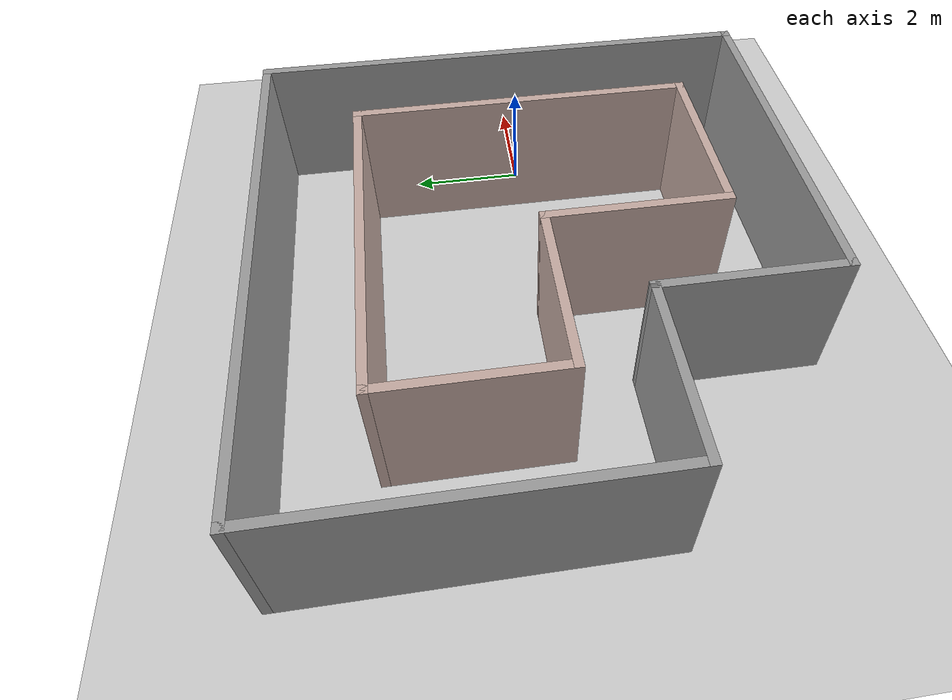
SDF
<sdf version="1.6">
 <world name="default">
  <light name="sun" type="directional">
   <pose>0 0 10 0 -0 0</pose>
   <diffuse>0.8 0.8 0.8 1</diffuse>
   <specular>0.2 0.2 0.2 1</specular>
   <attenuation>
    <range>1000</range>
    <constant>0.9</constant>
    <linear>0.01</linear>
    <quadratic>0.001</quadratic>
   </attenuation>
   <direction>-0.5 0.1 -0.9</direction>
  </light>
  <model name="ground_plane">
   <static>1</static>
   <link name="link">
    <collision name="collision">
     <geometry><plane><normal>0 0 1</normal><size>100 100</size></plane></geometry>
     <surface><friction><ode><mu>100</mu><mu2>50</mu2></ode></friction></surface>
    </collision>
    <visual name="visual">
     <cast_shadows>0</cast_shadows>
     <geometry><plane><normal>0 0 1</normal><size>100 100</size></plane></geometry>
     <material>
      <script><uri>file://media/materials/scripts/gazebo.material</uri><name>Gazebo/Grey</name></script>
     </material>
    </visual>
   </link>
  </model>
  <gravity>0 0 -9.8</gravity>
  <magnetic_field>6e-06 2.3e-05 -4.2e-05</magnetic_field>
  <atmosphere type="adiabatic"/>
  <physics name="default_physics" default="0" type="ode">
   <max_step_size>0.001</max_step_size>
   <real_time_factor>1</real_time_factor>
   <real_time_update_rate>1000</real_time_update_rate>
  </physics>
  <scene><ambient>0.4 0.4 0.4 1</ambient><background>0.7 0.7 0.7 1</background><shadows>1</shadows></scene>
  <spherical_coordinates>
   <surface_model>EARTH_WGS84</surface_model>
   <latitude_deg>0</latitude_deg>
   <longitude_deg>0</longitude_deg>
   <elevation>0</elevation>
   <heading_deg>0</heading_deg>
  </spherical_coordinates>
  <model name="corridor2">
   <pose>-3.77438 0.132637 0 0 -0 0</pose>
   <link name="Wall_13">
    <collision name="Wall_13_Collision">
     <geometry><box><size>3.00002 0.15 2.5</size></box></geometry>
     <pose>0 0 1.25 0 -0 0</pose>
    </collision>
    <visual name="Wall_13_Visual">
     <pose>0 0 1.25 0 -0 0</pose>
     <geometry><box><size>3.00002 0.15 2.5</size></box></geometry>
     <material>
      <script><uri>file://media/materials/scripts/gazebo.material</uri><name>Gazebo/Grey</name></script>
      <ambient>0.760784 0.662745 0.627451 1</ambient>
     </material>
     <meta><layer>0</layer></meta>
    </visual>
    <pose>1.55795 -3.075 0 0 -0 0</pose>
   </link>
   <link name="Wall_14">
    <collision name="Wall_14_Collision">
     <geometry><box><size>6 0.15 2.5</size></box></geometry>
     <pose>0 0 1.25 0 -0 0</pose>
    </collision>
    <visual name="Wall_14_Visual">
     <pose>0 0 1.25 0 -0 0</pose>
     <geometry><box><size>6 0.15 2.5</size></box></geometry>
     <material>
      <script><uri>file://media/materials/scripts/gazebo.material</uri><name>Gazebo/Grey</name></script>
      <ambient>0.760784 0.662745 0.627451 1</ambient>
     </material>
     <meta><layer>0</layer></meta>
    </visual>
    <pose>2.98295 -0.15 0 0 -0 1.5708</pose>
   </link>
   <link name="Wall_15">
    <collision name="Wall_15_Collision">
     <geometry><box><size>6 0.15 2.5</size></box></geometry>
     <pose>0 0 1.25 0 -0 0</pose>
    </collision>
    <visual name="Wall_15_Visual">
     <pose>0 0 1.25 0 -0 0</pose>
     <geometry><box><size>6 0.15 2.5</size></box></geometry>
     <material>
      <script><uri>file://media/materials/scripts/gazebo.material</uri><name>Gazebo/Grey</name></script>
      <ambient>0.760784 0.662745 0.627451 1</ambient>
     </material>
     <meta><layer>0</layer></meta>
    </visual>
    <pose>0.057948 2.775 0 0 -0 3.14159</pose>
   </link>
   <link name="Wall_16">
    <collision name="Wall_16_Collision">
     <geometry><box><size>3 0.15 2.5</size></box></geometry>
     <pose>0 0 1.25 0 -0 0</pose>
    </collision>
    <visual name="Wall_16_Visual">
     <pose>0 0 1.25 0 -0 0</pose>
     <geometry><box><size>3 0.15 2.5</size></box></geometry>
     <material>
      <script><uri>file://media/materials/scripts/gazebo.material</uri><name>Gazebo/Grey</name></script>
      <ambient>0.760784 0.662745 0.627451 1</ambient>
     </material>
     <meta><layer>0</layer></meta>
    </visual>
    <pose>-2.86705 1.35 0 0 0 -1.5708</pose>
   </link>
   <link name="Wall_17">
    <collision name="Wall_17_Collision">
     <geometry><box><size>3 0.15 2.5</size></box></geometry>
     <pose>0 0 1.25 0 -0 0</pose>
    </collision>
    <visual name="Wall_17_Visual">
     <pose>0 0 1.25 0 -0 0</pose>
     <geometry><box><size>3 0.15 2.5</size></box></geometry>
     <material>
      <script><uri>file://media/materials/scripts/gazebo.material</uri><name>Gazebo/Grey</name></script>
      <ambient>0.760784 0.662745 0.627451 1</ambient>
     </material>
     <meta><layer>0</layer></meta>
    </visual>
    <pose>-1.44205 -0.075 0 0 -0 0</pose>
   </link>
   <link name="Wall_18">
    <collision name="Wall_18_Collision">
     <geometry><box><size>3.15 0.15 2.5</size></box></geometry>
     <pose>0 0 1.25 0 -0 0</pose>
    </collision>
    <visual name="Wall_18_Visual">
     <pose>0 0 1.25 0 -0 0</pose>
     <geometry><box><size>3.15 0.15 2.5</size></box></geometry>
     <material>
      <script><uri>file://media/materials/scripts/gazebo.material</uri><name>Gazebo/Grey</name></script>
      <ambient>0.760784 0.662745 0.627451 1</ambient>
     </material>
     <meta><layer>0</layer></meta>
    </visual>
    <pose>-0.017052 -1.575 0 0 0 -1.5708</pose>
   </link>
   <link name="Wall_28">
    <collision name="Wall_28_Collision">
     <geometry><box><size>9 0.15 2.5</size></box></geometry>
     <pose>0 0 1.25 0 -0 0</pose>
    </collision>
    <visual name="Wall_28_Visual">
     <pose>0 0 1.25 0 -0 0</pose>
     <geometry><box><size>9 0.15 2.5</size></box></geometry>
     <material>
      <script><uri>file://media/materials/scripts/gazebo.material</uri><name>Gazebo/Grey</name></script>
      <ambient>1 1 1 1</ambient>
     </material>
     <meta><layer>0</layer></meta>
    </visual>
    <pose>4.51705 0 0 0 -0 1.5708</pose>
   </link>
   <link name="Wall_29">
    <collision name="Wall_29_Collision">
     <geometry><box><size>9.18411 0.15 2.5</size></box></geometry>
     <pose>0 0 1.25 0 -0 0</pose>
    </collision>
    <visual name="Wall_29_Visual">
     <pose>0 0 1.25 0 -0 0</pose>
     <geometry><box><size>9.18411 0.15 2.5</size></box></geometry>
     <material>
      <script><uri>file://media/materials/scripts/gazebo.material</uri><name>Gazebo/Grey</name></script>
      <ambient>1 1 1 1</ambient>
     </material>
     <meta><layer>0</layer></meta>
    </visual>
    <pose>0 4.425 0 0 -0 3.14159</pose>
   </link>
   <link name="Wall_30">
    <collision name="Wall_30_Collision">
     <geometry><box><size>6 0.15 2.5</size></box></geometry>
     <pose>0 0 1.25 0 -0 0</pose>
    </collision>
    <visual name="Wall_30_Visual">
     <pose>0 0 1.25 0 -0 0</pose>
     <geometry><box><size>6 0.15 2.5</size></box></geometry>
     <material>
      <script><uri>file://media/materials/scripts/gazebo.material</uri><name>Gazebo/Grey</name></script>
      <ambient>1 1 1 1</ambient>
     </material>
     <meta><layer>0</layer></meta>
    </visual>
    <pose>-4.51705 1.5 0 0 0 -1.5708</pose>
   </link>
   <link name="Wall_31">
    <collision name="Wall_31_Collision">
     <geometry><box><size>3 0.15 2.5</size></box></geometry>
     <pose>0 0 1.25 0 -0 0</pose>
    </collision>
    <visual name="Wall_31_Visual">
     <pose>0 0 1.25 0 -0 0</pose>
     <geometry><box><size>3 0.15 2.5</size></box></geometry>
     <material>
      <script><uri>file://media/materials/scripts/gazebo.material</uri><name>Gazebo/Grey</name></script>
      <ambient>1 1 1 1</ambient>
     </material>
     <meta><layer>0</layer></meta>
    </visual>
    <pose>-3.09205 -1.425 0 0 -0 0</pose>
   </link>
   <link name="Wall_32">
    <collision name="Wall_32_Collision">
     <geometry><box><size>3.15 0.15 2.5</size></box></geometry>
     <pose>0 0 1.25 0 -0 0</pose>
    </collision>
    <visual name="Wall_32_Visual">
     <pose>0 0 1.25 0 -0 0</pose>
     <geometry><box><size>3.15 0.15 2.5</size></box></geometry>
     <material>
      <script><uri>file://media/materials/scripts/gazebo.material</uri><name>Gazebo/Grey</name></script>
      <ambient>1 1 1 1</ambient>
     </material>
     <meta><layer>0</layer></meta>
    </visual>
    <pose>-1.66705 -2.925 0 0 0 -1.5708</pose>
   </link>
   <link name="Wall_35">
    <collision name="Wall_35_Collision">
     <geometry><box><size>6.33411 0.15 2.5</size></box></geometry>
     <pose>0 0 1.25 0 -0 0</pose>
    </collision>
    <visual name="Wall_35_Visual">
     <pose>0 0 1.25 0 -0 0</pose>
     <geometry><box><size>6.33411 0.15 2.5</size></box></geometry>
     <material>
      <script><uri>file://media/materials/scripts/gazebo.material</uri><name>Gazebo/Grey</name></script>
      <ambient>1 1 1 1</ambient>
     </material>
     <meta><layer>0</layer></meta>
    </visual>
    <pose>1.425 -4.425 0 0 -0 0</pose>
   </link>
   <static>1</static>
  </model>
 </world>
</sdf>
